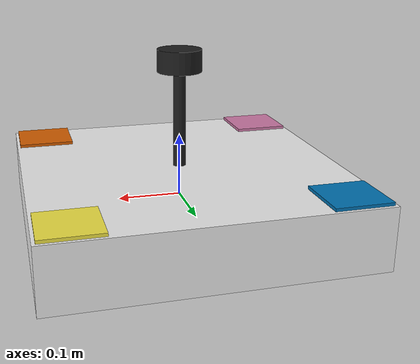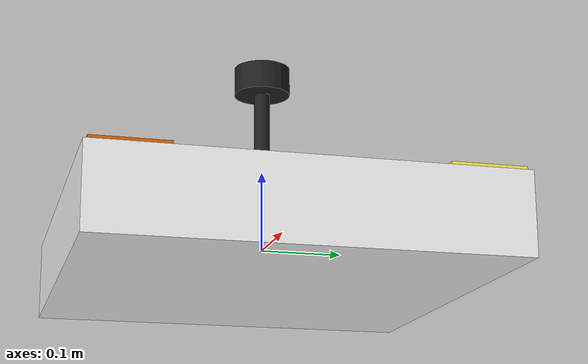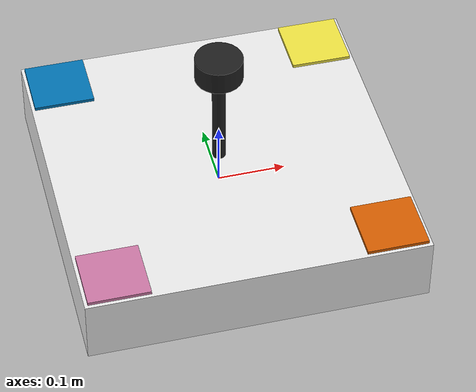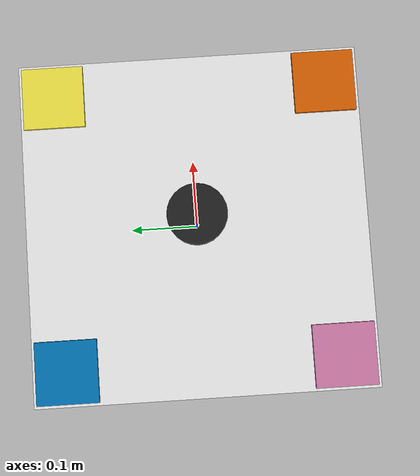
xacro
<?xml version="1.0"?>

<robot name="ar_tags">

  <link name = "mol">
      <visual>
        <origin rpy="0 0 0" xyz="0 0 0" />
        <geometry>
          <box size = "0.5 0.5 0.1"/>
        </geometry>
      </visual>

      <collision>
        <origin rpy="0 0 0" xyz="0 0 0" />
        <geometry>
            <box size = "0.5 0.5 0.1"/>
        </geometry>
      </collision>

      <inertial>
        <mass value="5" />
        <inertia ixx="0.216666666667" ixy="0.0" ixz="0.0" iyy="0.216666666667" iyz="0.0" izz="0.16666666667" />
      </inertial>

      <gravity>1</gravity>
      <self_collide>0</self_collide>
      <kinematic>0</kinematic>
      <enable_wind>0</enable_wind>

 </link>
 <gazebo reference="mol">
  <material>Gazebo/White</material>
 </gazebo>

  <joint name="mol_nob" type="fixed">
    <axis xyz="0 0 1"/>
    <origin rpy="0 0 0" xyz= "0 0 0.12"/>
    <parent link="mol"/>
    <child link="nob"/>
  </joint>

  <link name = "nob">
    <visual>
      <origin rpy="0 0 0" xyz="0 0 0" />
      <geometry>
        <cylinder radius = "0.01" length = "0.2"/>
      </geometry>
    </visual>

    <collision>
      <origin rpy="0 0 0" xyz="0 0 0" />
      <geometry>
        <cylinder radius = "0.01" length = "0.2"/>
      </geometry>
    </collision>

    <inertial>
      <mass value="0.01" />
      <inertia ixx="0.0" ixy="0.0" ixz="0.0" iyy="0.0" iyz="0.0" izz="0.0" />
    </inertial>

 </link>

 <gazebo reference="nob">
    <mu1>100000</mu1>
    <mu2>100000</mu2>
    <kp>100000000.0</kp>
    <kd>1.0</kd>
    <material>Gazebo/Black</material>
  </gazebo>

   <joint name="holder_nob" type="revolute">
    <axis xyz="0 0 1"/>
    <origin rpy="0 0 0" xyz= "0.0 0.0 0.1"/>
    <parent link="nob"/>
    <child link="holder"/>
    <limit effort="5.0" lower="-3.14159265359" upper="3.14159265359" velocity="0.4"/>
    <dynamics damping="50" friction="1"/>
   </joint>

   <link name = "holder">
      <visual>
        <origin rpy="0 0 0" xyz="0 0 0" />
        <geometry>
          <cylinder radius = "0.035" length = "0.035"/>
        </geometry>
      </visual>

      <collision>
        <origin rpy="0 0 0" xyz="0 0 0" />
        <geometry>
          <cylinder radius = "0.035" length = "0.035"/>
        </geometry>
      </collision>

      <inertial>
        <mass value="0.01" />
        <inertia ixx="0.0" ixy="0.0" ixz="0.0" iyy="0.0" iyz="0.0" izz="0.0" />
      </inertial>
 </link>

  <gazebo reference="holder">
    <mu1>100000</mu1>
    <mu2>100000</mu2>
    <kp>100000000.0</kp>
    <kd>1.0</kd>
    <material>Gazebo/Black</material>
  </gazebo>

  <joint name="mol_tag_1" type="fixed">
    <axis xyz="0 0 1"/>
    <origin rpy="0 0 0" xyz= "0.2 0.2 0.05"/>
    <parent link="mol"/>
    <child link="tag_1"/>
  </joint>

 <link name = "tag_1">
    <visual>
      <origin rpy="0 0 0" xyz="0 0 0" />
      <geometry>
        <mesh filename="package://ar_tags/meshes/1n.dae"/>
      </geometry>
    </visual>

    <collision>
      <origin rpy="0 0 0" xyz="0 0 0" />
      <geometry>
          <box size = "0.1 0.1 0.01"/>
      </geometry>
    </collision>
  </link>

  <joint name="mol_tag_2" type="fixed">
    <axis xyz="0 0 1"/>
    <origin rpy="0 0 0" xyz= "-0.2 0.2 0.05"/>
    <parent link="mol"/>
    <child link="tag_2"/>
   </joint>

 <link name = "tag_2">
    <visual>
      <origin rpy="0 0 0" xyz="0 0 0" />
      <geometry>
        <mesh filename="package://ar_tags/meshes/2n.dae"/>
      </geometry>
    </visual>

    <collision>
      <origin rpy="0 0 0" xyz="0 0 0" />
      <geometry>
          <box size = "0.1 0.1 0.01"/>
      </geometry>
    </collision>
  </link>

  <joint name="mol_tag_3" type="fixed">
    <axis xyz="0 0 1"/>
    <origin rpy="0 0 0" xyz= "0.2 -0.2 0.05"/>
    <parent link="mol"/>
    <child link="tag_3"/>
   </joint>

 <link name = "tag_3">
    <visual>
      <origin rpy="0 0 0" xyz="0 0 0" />
      <geometry>
        <mesh filename="package://ar_tags/meshes/3n.dae"/>
      </geometry>
    </visual>

    <collision>
      <origin rpy="0 0 0" xyz="0 0 0" />
      <geometry>
          <box size = "0.1 0.1 0.01"/>
      </geometry>
    </collision>
  </link>

    <joint name="mol_tag_4" type="fixed">
    <axis xyz="0 0 1"/>
    <origin rpy="0 0 0" xyz= "-0.2 -0.2 0.05"/>
    <parent link="mol"/>
    <child link="tag_4"/>
   </joint>

 <link name = "tag_4">
    <visual>
      <origin rpy="0 0 0" xyz="0 0 0" />
      <geometry>
        <mesh filename="package://ar_tags/meshes/4n.dae"/>
      </geometry>
    </visual>

    <collision>
      <origin rpy="0 0 0" xyz="0 0 0" />
      <geometry>
          <box size = "0.1 0.1 0.01"/>
      </geometry>
    </collision>
  </link>

</robot>
